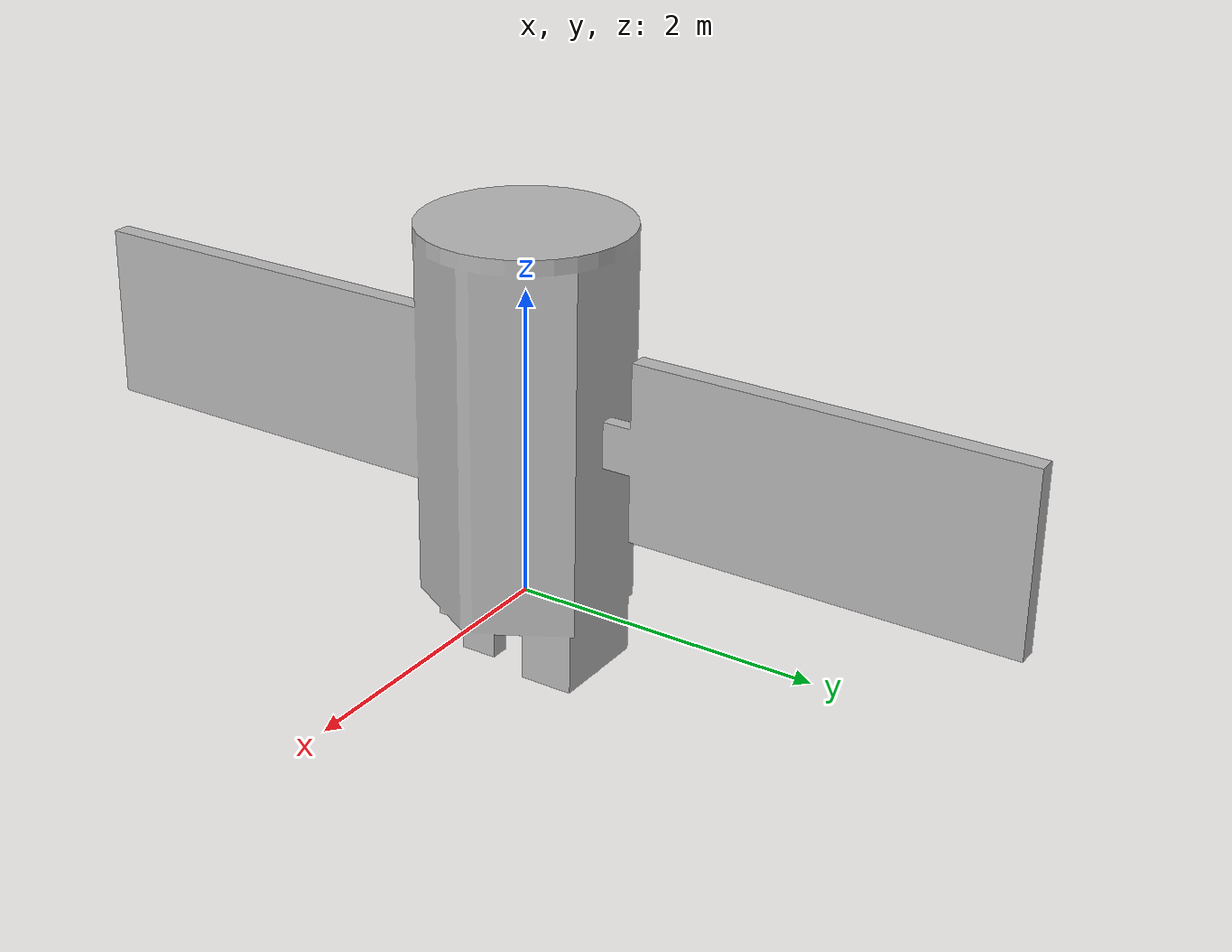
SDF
<?xml version="1.0" ?>
<sdf version="1.6">
  <model name="my_surface">
    <static>true</static>
    <link name="link">
      <visual name="visual">
        <geometry>
          <mesh>
            <uri>/home/smrl/3d_lidar_ws/src/kompsat_model/src/meshes/KOMPSAT.stl</uri>
            <scale>1 1 1</scale> <!-- 필요시 조정 -->
          </mesh>
        </geometry>
      </visual>
    </link>
  </model>
</sdf>
